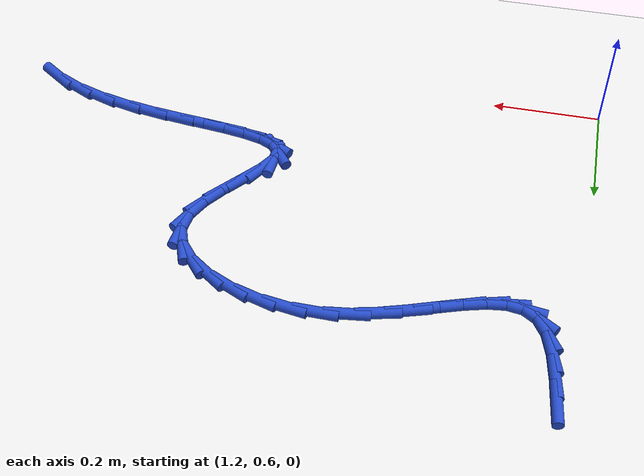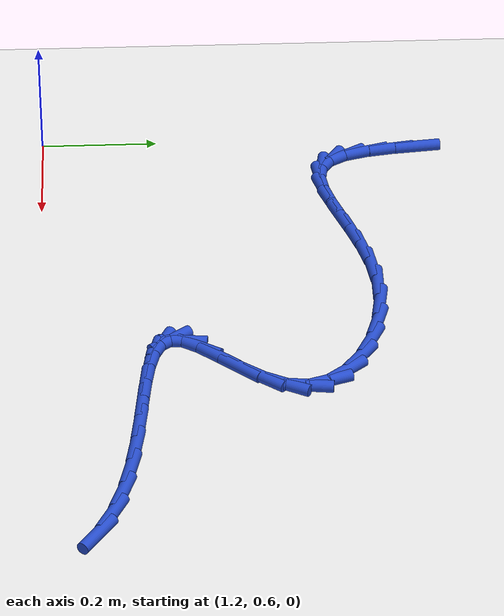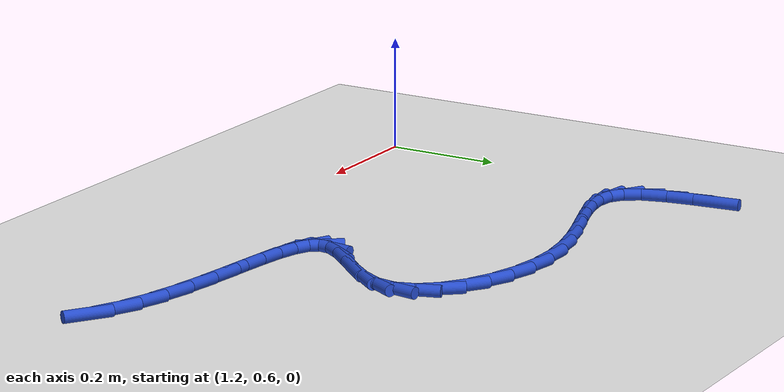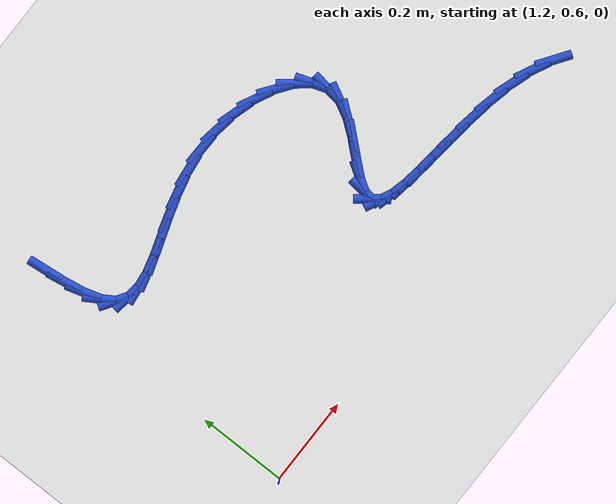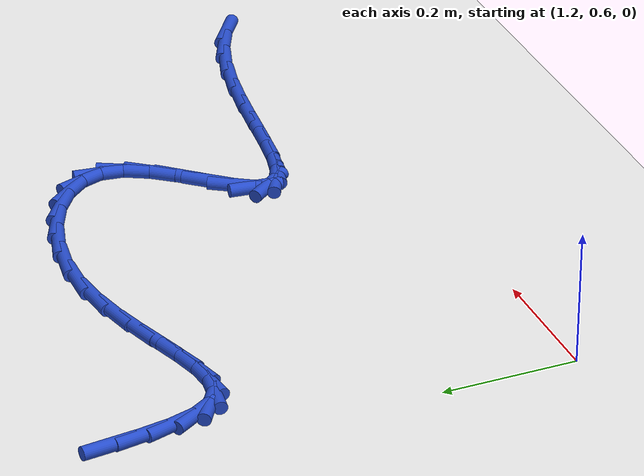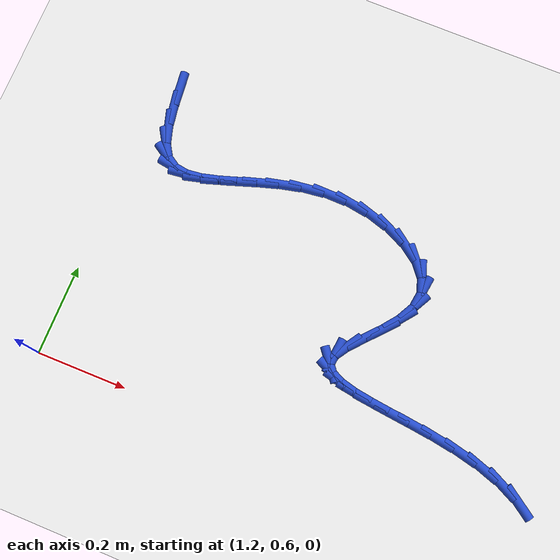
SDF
<sdf version="1.6">
 <world name="default">
  <model name="ground_plane">
   <static>1</static>
   <link name="link">
    <collision name="collision">
     <geometry><plane><normal>0 0 1</normal><size>100 100</size></plane></geometry>
     <surface><friction><ode><mu>100</mu><mu2>50</mu2></ode></friction></surface>
    </collision>
    <visual name="visual">
     <cast_shadows>0</cast_shadows>
     <geometry><plane><normal>0 0 1</normal><size>100 100</size></plane></geometry>
     <material>
      <script><uri>file://media/materials/scripts/gazebo.material</uri><name>Gazebo/WhiteGlow</name></script>
     </material>
    </visual>
   </link>
  </model>
  <model name="line">
   <link name="link_54">
    <pose>1.2411467961692795 1.2582248247808703 0.01 0 1.57 -1.4590683940083717</pose>
    <collision name="collision">
     <geometry><cylinder><radius>0.01</radius><length>0.08</length></cylinder></geometry>
    </collision>
    <visual name="visual">
     <material>
      <script><name>Gazebo/Blue</name><uri>file://media/materials/scripts/gazebo.material</uri></script>
     </material>
     <geometry><cylinder><radius>0.01</radius><length>0.08</length></cylinder></geometry>
    </visual>
   </link>
   <link name="link_55">
    <pose>1.2463926583519807 1.2114682474096663 0.01 0 1.57 -1.4025240571177398</pose>
    <collision name="collision">
     <geometry><cylinder><radius>0.01</radius><length>0.08</length></cylinder></geometry>
    </collision>
    <visual name="visual">
     <material>
      <script><name>Gazebo/Blue</name><uri>file://media/materials/scripts/gazebo.material</uri></script>
     </material>
     <geometry><cylinder><radius>0.01</radius><length>0.08</length></cylinder></geometry>
    </visual>
   </link>
   <link name="link_56">
    <pose>1.2539983009480475 1.1666972299874532 0.01 0 1.57 -1.2787306433403571</pose>
    <collision name="collision">
     <geometry><cylinder><radius>0.01</radius><length>0.08</length></cylinder></geometry>
    </collision>
    <visual name="visual">
     <material>
      <script><name>Gazebo/Blue</name><uri>file://media/materials/scripts/gazebo.material</uri></script>
     </material>
     <geometry><cylinder><radius>0.01</radius><length>0.08</length></cylinder></geometry>
    </visual>
   </link>
   <link name="link_57">
    <pose>1.2655060378904543 1.1284227967257388 0.01 0 1.57 -1.0163500280013995</pose>
    <collision name="collision">
     <geometry><cylinder><radius>0.01</radius><length>0.08</length></cylinder></geometry>
    </collision>
    <visual name="visual">
     <material>
      <script><name>Gazebo/Blue</name><uri>file://media/materials/scripts/gazebo.material</uri></script>
     </material>
     <geometry><cylinder><radius>0.01</radius><length>0.08</length></cylinder></geometry>
    </visual>
   </link>
   <link name="link_58">
    <pose>1.2824356260562149 1.1010834803385525 0.01 0 1.57 -0.5710843468272183</pose>
    <collision name="collision">
     <geometry><cylinder><radius>0.01</radius><length>0.08</length></cylinder></geometry>
    </collision>
    <visual name="visual">
     <material>
      <script><name>Gazebo/Blue</name><uri>file://media/materials/scripts/gazebo.material</uri></script>
     </material>
     <geometry><cylinder><radius>0.01</radius><length>0.08</length></cylinder></geometry>
    </visual>
   </link>
   <link name="link_59">
    <pose>1.3054324981939296 1.0863080024783072 0.01 0 1.57 -0.14689999187408434</pose>
    <collision name="collision">
     <geometry><cylinder><radius>0.01</radius><length>0.08</length></cylinder></geometry>
    </collision>
    <visual name="visual">
     <material>
      <script><name>Gazebo/Blue</name><uri>file://media/materials/scripts/gazebo.material</uri></script>
     </material>
     <geometry><cylinder><radius>0.01</radius><length>0.08</length></cylinder></geometry>
    </visual>
   </link>
   <link name="link_60">
    <pose>1.3340078002253346 1.0820798329170298 0.01 0 1.57 0.12027306153641136</pose>
    <collision name="collision">
     <geometry><cylinder><radius>0.01</radius><length>0.08</length></cylinder></geometry>
    </collision>
    <visual name="visual">
     <material>
      <script><name>Gazebo/Blue</name><uri>file://media/materials/scripts/gazebo.material</uri></script>
     </material>
     <geometry><cylinder><radius>0.01</radius><length>0.08</length></cylinder></geometry>
    </visual>
   </link>
   <link name="link_61">
    <pose>1.367597021584127 1.0861393045509935 0.01 0 1.57 0.2592227981467404</pose>
    <collision name="collision">
     <geometry><cylinder><radius>0.01</radius><length>0.08</length></cylinder></geometry>
    </collision>
    <visual name="visual">
     <material>
      <script><name>Gazebo/Blue</name><uri>file://media/materials/scripts/gazebo.material</uri></script>
     </material>
     <geometry><cylinder><radius>0.01</radius><length>0.08</length></cylinder></geometry>
    </visual>
   </link>
   <link name="link_62">
    <pose>1.4056356517040018 1.0962267502764715 0.01 0 1.57 0.3191989627151932</pose>
    <collision name="collision">
     <geometry><cylinder><radius>0.01</radius><length>0.08</length></cylinder></geometry>
    </collision>
    <visual name="visual">
     <material>
      <script><name>Gazebo/Blue</name><uri>file://media/materials/scripts/gazebo.material</uri></script>
     </material>
     <geometry><cylinder><radius>0.01</radius><length>0.08</length></cylinder></geometry>
    </visual>
   </link>
   <link name="link_63">
    <pose>1.4475591800186558 1.110082502989737 0.01 0 1.57 0.32737116722858617</pose>
    <collision name="collision">
     <geometry><cylinder><radius>0.01</radius><length>0.08</length></cylinder></geometry>
    </collision>
    <visual name="visual">
     <material>
      <script><name>Gazebo/Blue</name><uri>file://media/materials/scripts/gazebo.material</uri></script>
     </material>
     <geometry><cylinder><radius>0.01</radius><length>0.08</length></cylinder></geometry>
    </visual>
   </link>
   <link name="link_64">
    <pose>1.4928030959617844 1.1254468955870633 0.01 0 1.57 0.29553107477926754</pose>
    <collision name="collision">
     <geometry><cylinder><radius>0.01</radius><length>0.08</length></cylinder></geometry>
    </collision>
    <visual name="visual">
     <material>
      <script><name>Gazebo/Blue</name><uri>file://media/materials/scripts/gazebo.material</uri></script>
     </material>
     <geometry><cylinder><radius>0.01</radius><length>0.08</length></cylinder></geometry>
    </visual>
   </link>
   <link name="link_65">
    <pose>1.5408028889670844 1.1400602609647243 0.01 0 1.57 0.22717895545561914</pose>
    <collision name="collision">
     <geometry><cylinder><radius>0.01</radius><length>0.08</length></cylinder></geometry>
    </collision>
    <visual name="visual">
     <material>
      <script><name>Gazebo/Blue</name><uri>file://media/materials/scripts/gazebo.material</uri></script>
     </material>
     <geometry><cylinder><radius>0.01</radius><length>0.08</length></cylinder></geometry>
    </visual>
   </link>
   <link name="link_66">
    <pose>1.5909940484682528 1.151662932018993 0.01 0 1.57 0.12159994487263455</pose>
    <collision name="collision">
     <geometry><cylinder><radius>0.01</radius><length>0.08</length></cylinder></geometry>
    </collision>
    <visual name="visual">
     <material>
      <script><name>Gazebo/Blue</name><uri>file://media/materials/scripts/gazebo.material</uri></script>
     </material>
     <geometry><cylinder><radius>0.01</radius><length>0.08</length></cylinder></geometry>
    </visual>
   </link>
   <link name="link_67">
    <pose>1.6428120638989832 1.1579952416461425 0.01 0 1.57 -0.017429583581696672</pose>
    <collision name="collision">
     <geometry><cylinder><radius>0.01</radius><length>0.08</length></cylinder></geometry>
    </collision>
    <visual name="visual">
     <material>
      <script><name>Gazebo/Blue</name><uri>file://media/materials/scripts/gazebo.material</uri></script>
     </material>
     <geometry><cylinder><radius>0.01</radius><length>0.08</length></cylinder></geometry>
    </visual>
   </link>
   <link name="link_68">
    <pose>1.6955278284254984 1.157076334768679 0.01 0 1.57 -0.15701295126049303</pose>
    <collision name="collision">
     <geometry><cylinder><radius>0.01</radius><length>0.08</length></cylinder></geometry>
    </collision>
    <visual name="visual">
     <material>
      <script><name>Gazebo/Blue</name><uri>file://media/materials/scripts/gazebo.material</uri></script>
     </material>
     <geometry><cylinder><radius>0.01</radius><length>0.08</length></cylinder></geometry>
    </visual>
   </link>
   <link name="link_69">
    <pose>1.747254037895647 1.148887243696133 0.01 0 1.57 -0.2939301334624299</pose>
    <collision name="collision">
     <geometry><cylinder><radius>0.01</radius><length>0.08</length></cylinder></geometry>
    </collision>
    <visual name="visual">
     <material>
      <script><name>Gazebo/Blue</name><uri>file://media/materials/scripts/gazebo.material</uri></script>
     </material>
     <geometry><cylinder><radius>0.01</radius><length>0.08</length></cylinder></geometry>
    </visual>
   </link>
   <link name="link_70">
    <pose>1.7956062370420536 1.1342511322875855 0.01 0 1.57 -0.4439389136432677</pose>
    <collision name="collision">
     <geometry><cylinder><radius>0.01</radius><length>0.08</length></cylinder></geometry>
    </collision>
    <visual name="visual">
     <material>
      <script><name>Gazebo/Blue</name><uri>file://media/materials/scripts/gazebo.material</uri></script>
     </material>
     <geometry><cylinder><radius>0.01</radius><length>0.08</length></cylinder></geometry>
    </visual>
   </link>
   <link name="link_71">
    <pose>1.8381980594227822 1.1139944017686734 0.01 0 1.57 -0.6287959395421302</pose>
    <collision name="collision">
     <geometry><cylinder><radius>0.01</radius><length>0.08</length></cylinder></geometry>
    </collision>
    <visual name="visual">
     <material>
      <script><name>Gazebo/Blue</name><uri>file://media/materials/scripts/gazebo.material</uri></script>
     </material>
     <geometry><cylinder><radius>0.01</radius><length>0.08</length></cylinder></geometry>
    </visual>
   </link>
   <link name="link_72">
    <pose>1.8726431385958988 1.0889434533650344 0.01 0 1.57 -0.8815811827319583</pose>
    <collision name="collision">
     <geometry><cylinder><radius>0.01</radius><length>0.08</length></cylinder></geometry>
    </collision>
    <visual name="visual">
     <material>
      <script><name>Gazebo/Blue</name><uri>file://media/materials/scripts/gazebo.material</uri></script>
     </material>
     <geometry><cylinder><radius>0.01</radius><length>0.08</length></cylinder></geometry>
    </visual>
   </link>
   <link name="link_73">
    <pose>1.8965551081194667 1.0599246883023061 0.01 0 1.57 -1.2414412226056262</pose>
    <collision name="collision">
     <geometry><cylinder><radius>0.01</radius><length>0.08</length></cylinder></geometry>
    </collision>
    <visual name="visual">
     <material>
      <script><name>Gazebo/Blue</name><uri>file://media/materials/scripts/gazebo.material</uri></script>
     </material>
     <geometry><cylinder><radius>0.01</radius><length>0.08</length></cylinder></geometry>
    </visual>
   </link>
   <link name="link_74">
    <pose>1.907547601551551 1.0277645078061248 0.01 0 1.57 1.4479981308331815</pose>
    <collision name="collision">
     <geometry><cylinder><radius>0.01</radius><length>0.08</length></cylinder></geometry>
    </collision>
    <visual name="visual">
     <material>
      <script><name>Gazebo/Blue</name><uri>file://media/materials/scripts/gazebo.material</uri></script>
     </material>
     <geometry><cylinder><radius>0.01</radius><length>0.08</length></cylinder></geometry>
    </visual>
   </link>
   <link name="link_75">
    <pose>1.903293256394459 0.9932938115899279 0.01 0 1.57 1.0904280134371107</pose>
    <collision name="collision">
     <geometry><cylinder><radius>0.01</radius><length>0.08</length></cylinder></geometry>
    </collision>
    <visual name="visual">
     <material>
      <script><name>Gazebo/Blue</name><uri>file://media/materials/scripts/gazebo.material</uri></script>
     </material>
     <geometry><cylinder><radius>0.01</radius><length>0.08</length></cylinder></geometry>
    </visual>
   </link>
   <link name="link_76">
    <pose>1.8846883682712505 0.957589272542316 0.01 0 1.57 0.9162811762825648</pose>
    <collision name="collision">
     <geometry><cylinder><radius>0.01</radius><length>0.08</length></cylinder></geometry>
    </collision>
    <visual name="visual">
     <material>
      <script><name>Gazebo/Blue</name><uri>file://media/materials/scripts/gazebo.material</uri></script>
     </material>
     <geometry><cylinder><radius>0.01</radius><length>0.08</length></cylinder></geometry>
    </visual>
   </link>
   <link name="link_77">
    <pose>1.8574519032172854 0.9220952461582977 0.01 0 1.57 0.8491087048740074</pose>
    <collision name="collision">
     <geometry><cylinder><radius>0.01</radius><length>0.08</length></cylinder></geometry>
    </collision>
    <visual name="visual">
     <material>
      <script><name>Gazebo/Blue</name><uri>file://media/materials/scripts/gazebo.material</uri></script>
     </material>
     <geometry><cylinder><radius>0.01</radius><length>0.08</length></cylinder></geometry>
    </visual>
   </link>
   <link name="link_78">
    <pose>1.827697990068302 0.8882862153262104 0.01 0 1.57 0.8643146230581641</pose>
    <collision name="collision">
     <geometry><cylinder><radius>0.01</radius><length>0.08</length></cylinder></geometry>
    </collision>
    <visual name="visual">
     <material>
      <script><name>Gazebo/Blue</name><uri>file://media/materials/scripts/gazebo.material</uri></script>
     </material>
     <geometry><cylinder><radius>0.01</radius><length>0.08</length></cylinder></geometry>
    </visual>
   </link>
   <link name="link_79">
    <pose>1.8015407576600357 0.8576366629343894 0.01 0 1.57 1.0070535405813916</pose>
    <collision name="collision">
     <geometry><cylinder><radius>0.01</radius><length>0.08</length></cylinder></geometry>
    </collision>
    <visual name="visual">
     <material>
      <script><name>Gazebo/Blue</name><uri>file://media/materials/scripts/gazebo.material</uri></script>
     </material>
     <geometry><cylinder><radius>0.01</radius><length>0.08</length></cylinder></geometry>
    </visual>
   </link>
   <link name="link_80">
    <pose>1.7850943304857636 0.8316210705154643 0.01 0 1.57 1.471792723208848</pose>
    <collision name="collision">
     <geometry><cylinder><radius>0.01</radius><length>0.08</length></cylinder></geometry>
    </collision>
    <visual name="visual">
     <material>
      <script><name>Gazebo/Blue</name><uri>file://media/materials/scripts/gazebo.material</uri></script>
     </material>
     <geometry><cylinder><radius>0.01</radius><length>0.08</length></cylinder></geometry>
    </visual>
   </link>
   <link name="link_81">
    <pose>1.7830735956409742 0.8112770806782608 0.01 0 1.57 -0.9154324322703515</pose>
    <collision name="collision">
     <geometry><cylinder><radius>0.01</radius><length>0.08</length></cylinder></geometry>
    </collision>
    <visual name="visual">
     <material>
      <script><name>Gazebo/Blue</name><uri>file://media/materials/scripts/gazebo.material</uri></script>
     </material>
     <geometry><cylinder><radius>0.01</radius><length>0.08</length></cylinder></geometry>
    </visual>
   </link>
   <link name="link_82">
    <pose>1.794839533312798 0.7959708577422989 0.01 0 1.57 -0.446076149702552</pose>
    <collision name="collision">
     <geometry><cylinder><radius>0.01</radius><length>0.08</length></cylinder></geometry>
    </collision>
    <visual name="visual">
     <material>
      <script><name>Gazebo/Blue</name><uri>file://media/materials/scripts/gazebo.material</uri></script>
     </material>
     <geometry><cylinder><radius>0.01</radius><length>0.08</length></cylinder></geometry>
    </visual>
   </link>
   <link name="link_83">
    <pose>1.818472791231042 0.78466884897147 0.01 0 1.57 -0.2431852874329922</pose>
    <collision name="collision">
     <geometry><cylinder><radius>0.01</radius><length>0.08</length></cylinder></geometry>
    </collision>
    <visual name="visual">
     <material>
      <script><name>Gazebo/Blue</name><uri>file://media/materials/scripts/gazebo.material</uri></script>
     </material>
     <geometry><cylinder><radius>0.01</radius><length>0.08</length></cylinder></geometry>
    </visual>
   </link>
   <link name="link_84">
    <pose>1.8520540171255098 0.7763375016296661 0.01 0 1.57 -0.152478517558831</pose>
    <collision name="collision">
     <geometry><cylinder><radius>0.01</radius><length>0.08</length></cylinder></geometry>
    </collision>
    <visual name="visual">
     <material>
      <script><name>Gazebo/Blue</name><uri>file://media/materials/scripts/gazebo.material</uri></script>
     </material>
     <geometry><cylinder><radius>0.01</radius><length>0.08</length></cylinder></geometry>
    </visual>
   </link>
   <link name="link_85">
    <pose>1.8936638587260064 0.7699432629807776 0.01 0 1.57 -0.1145587760942902</pose>
    <collision name="collision">
     <geometry><cylinder><radius>0.01</radius><length>0.08</length></cylinder></geometry>
    </collision>
    <visual name="visual">
     <material>
      <script><name>Gazebo/Blue</name><uri>file://media/materials/scripts/gazebo.material</uri></script>
     </material>
     <geometry><cylinder><radius>0.01</radius><length>0.08</length></cylinder></geometry>
    </visual>
   </link>
   <link name="link_86">
    <pose>1.941382963762336 0.7644525802886971 0.01 0 1.57 -0.10785922540370048</pose>
    <collision name="collision">
     <geometry><cylinder><radius>0.01</radius><length>0.08</length></cylinder></geometry>
    </collision>
    <visual name="visual">
     <material>
      <script><name>Gazebo/Blue</name><uri>file://media/materials/scripts/gazebo.material</uri></script>
     </material>
     <geometry><cylinder><radius>0.01</radius><length>0.08</length></cylinder></geometry>
    </visual>
   </link>
   <link name="link_87">
    <pose>1.993291979964304 0.7588319008173157 0.01 0 1.57 -0.12456910707643869</pose>
    <collision name="collision">
     <geometry><cylinder><radius>0.01</radius><length>0.08</length></cylinder></geometry>
    </collision>
    <visual name="visual">
     <material>
      <script><name>Gazebo/Blue</name><uri>file://media/materials/scripts/gazebo.material</uri></script>
     </material>
     <geometry><cylinder><radius>0.01</radius><length>0.08</length></cylinder></geometry>
    </visual>
   </link>
   <link name="link_88">
    <pose>2.0474715550617164 0.7520476718305243 0.01 0 1.57 -0.16323654630039297</pose>
    <collision name="collision">
     <geometry><cylinder><radius>0.01</radius><length>0.08</length></cylinder></geometry>
    </collision>
    <visual name="visual">
     <material>
      <script><name>Gazebo/Blue</name><uri>file://media/materials/scripts/gazebo.material</uri></script>
     </material>
     <geometry><cylinder><radius>0.01</radius><length>0.08</length></cylinder></geometry>
    </visual>
   </link>
   <link name="link_89">
    <pose>2.1020023367843756 0.7430663405922153 0.01 0 1.57 -0.22661669642589613</pose>
    <collision name="collision">
     <geometry><cylinder><radius>0.01</radius><length>0.08</length></cylinder></geometry>
    </collision>
    <visual name="visual">
     <material>
      <script><name>Gazebo/Blue</name><uri>file://media/materials/scripts/gazebo.material</uri></script>
     </material>
     <geometry><cylinder><radius>0.01</radius><length>0.08</length></cylinder></geometry>
    </visual>
   </link>
   <link name="link_90">
    <pose>2.1549649728620888 0.7308543543662793 0.01 0 1.57 -0.32146822657241714</pose>
    <collision name="collision">
     <geometry><cylinder><radius>0.01</radius><length>0.08</length></cylinder></geometry>
    </collision>
    <visual name="visual">
     <material>
      <script><name>Gazebo/Blue</name><uri>file://media/materials/scripts/gazebo.material</uri></script>
     </material>
     <geometry><cylinder><radius>0.01</radius><length>0.08</length></cylinder></geometry>
    </visual>
   </link>
   <link name="link_91">
    <pose>2.204440111024659 0.7143781604166086 0.01 0 1.57 -0.45471465340808626</pose>
    <collision name="collision">
     <geometry><cylinder><radius>0.01</radius><length>0.08</length></cylinder></geometry>
    </collision>
    <visual name="visual">
     <material>
      <script><name>Gazebo/Blue</name><uri>file://media/materials/scripts/gazebo.material</uri></script>
     </material>
     <geometry><cylinder><radius>0.01</radius><length>0.08</length></cylinder></geometry>
    </visual>
   </link>
   <link name="link_92">
    <pose>2.2486724014160306 0.6927537383871352 0.01 0 1.57 -0.6050163569250033</pose>
    <collision name="collision">
     <geometry><cylinder><radius>0.01</radius><length>0.08</length></cylinder></geometry>
    </collision>
    <visual name="visual">
     <material>
      <script><name>Gazebo/Blue</name><uri>file://media/materials/scripts/gazebo.material</uri></script>
     </material>
     <geometry><cylinder><radius>0.01</radius><length>0.08</length></cylinder></geometry>
    </visual>
   </link>
  </model>
 </world>
</sdf>
